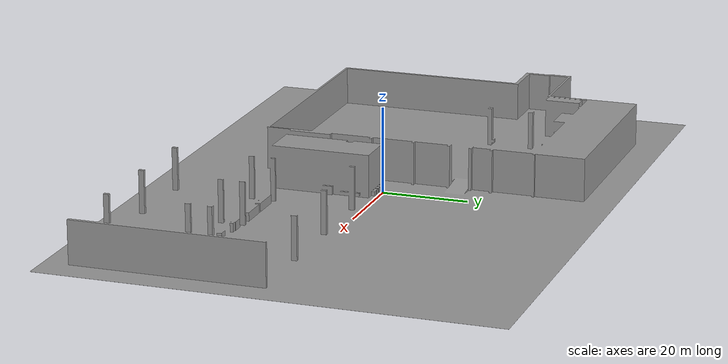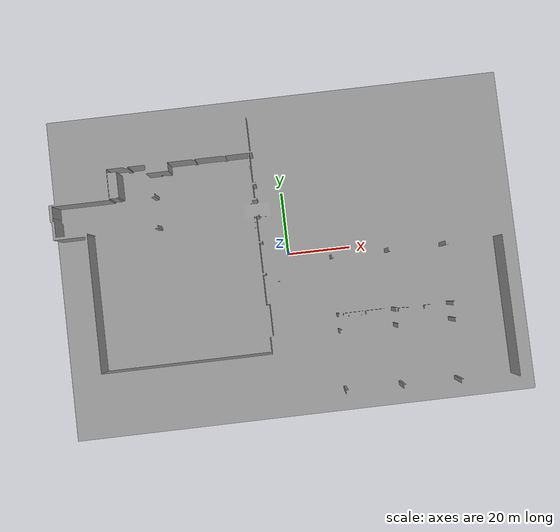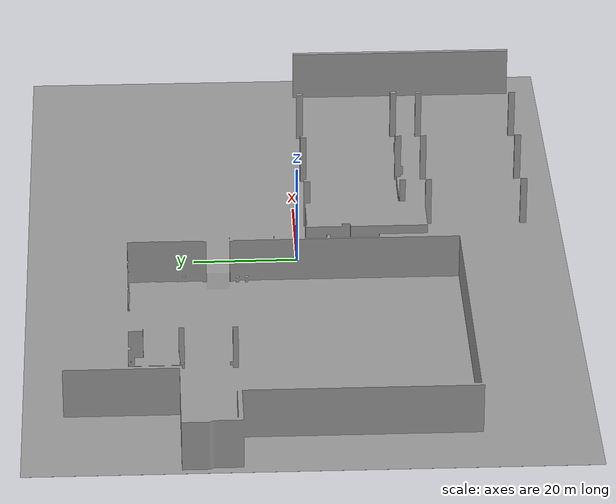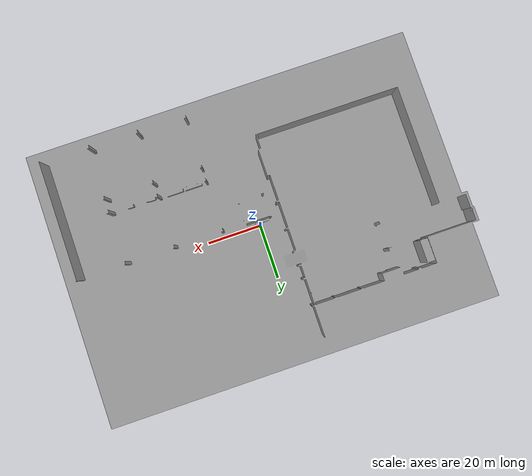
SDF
<?xml version="1.0" ?>
<sdf version="1.5">
  <model name="psa_environment">
    <link name="link">
      <collision name="collision">
        <pose>0 0 0 0 0 0</pose>
        <geometry>
          <mesh>
            <uri>model://PSA_Environment/meshes/Map_PSA.STL</uri>
          </mesh>
        </geometry>
      </collision>
      <visual name="visual">
        <pose>0 0 0 0 0 0</pose>
        <geometry>
          <mesh>
            <uri>model://PSA_Environment/meshes/Map_PSA.STL</uri>
          </mesh>
        </geometry>
        <material>
          <script>
            <uri>file://media/materials/scripts/gazebo.material</uri>
            <name>Gazebo/Grey</name>
          </script>
        </material>
      </visual>
    </link>
  </model>
</sdf>
